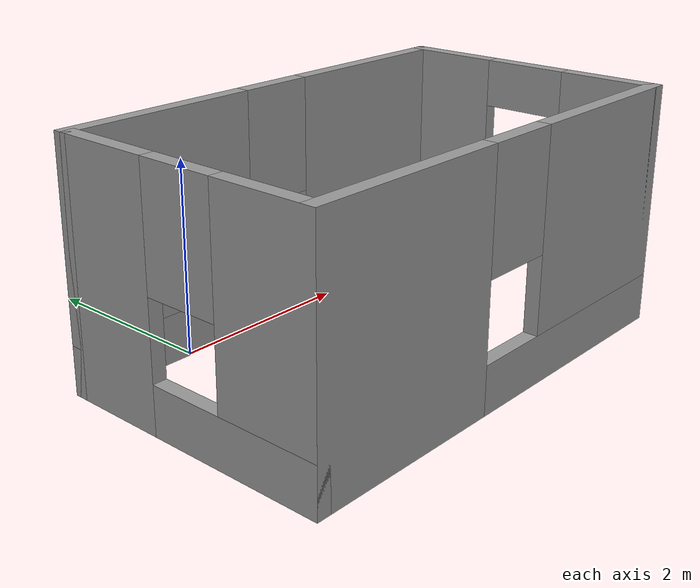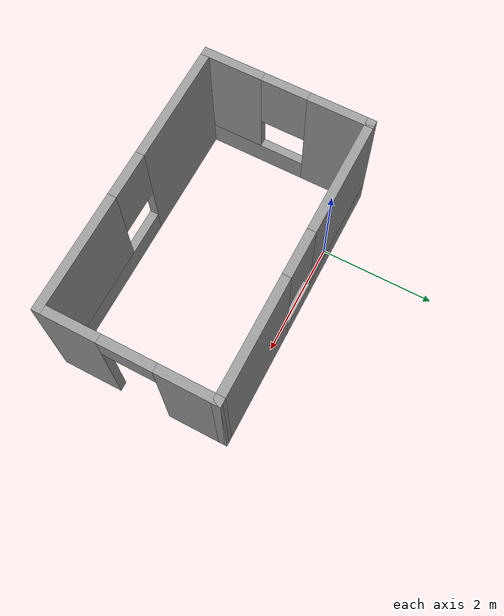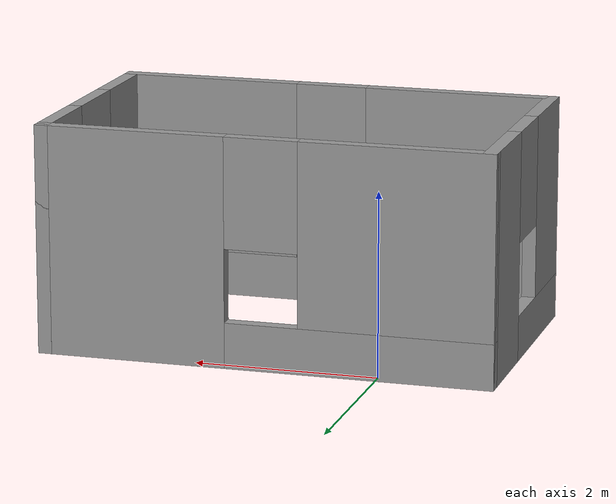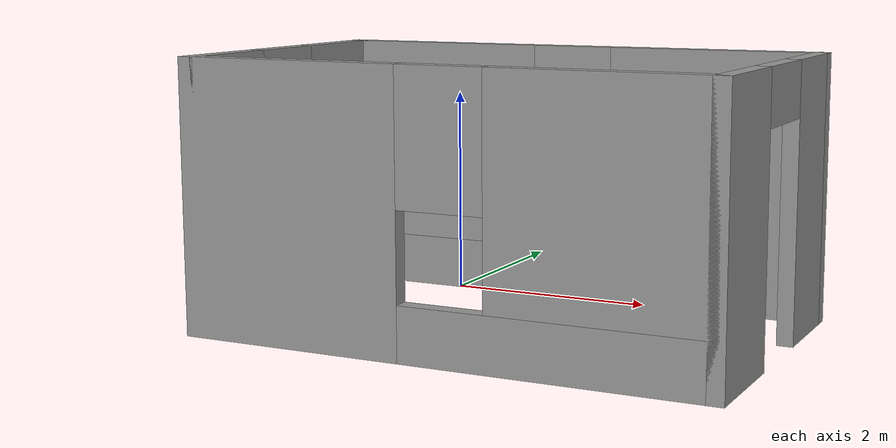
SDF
<?xml version='1.0'?>
<sdf version='1.7'>
  <model name='room_test'>
    <pose>1.2367 -1.38255 0 0 -0 0</pose>
    <link name='Wall_0'>
      <pose>0 -1.425 0 0 -0 0</pose>
      <visual name='Wall_0_Visual_0'>
        <pose>-1.41935 0 1.25 0 -0 0</pose>
        <geometry>
          <box>
            <size>2.1613 0.15 2.5</size>
          </box>
        </geometry>
        <material>
          <script>
            <uri>file://media/materials/scripts/gazebo.material</uri>
            <name>Gazebo/Grey</name>
          </script>
          <ambient>1 1 1 1</ambient>
        </material>
        <meta>
          <layer>0</layer>
        </meta>
      </visual>
      <collision name='Wall_0_Collision_0'>
        <geometry>
          <box>
            <size>2.1613 0.15 2.5</size>
          </box>
        </geometry>
        <pose>-1.41935 0 1.25 0 -0 0</pose>
      </collision>
      <visual name='Wall_0_Visual_1'>
        <pose>1.08065 0 0.25 0 -0 0</pose>
        <geometry>
          <box>
            <size>2.8387 0.15 0.5</size>
          </box>
        </geometry>
        <material>
          <script>
            <uri>file://media/materials/scripts/gazebo.material</uri>
            <name>Gazebo/Grey</name>
          </script>
          <ambient>1 1 1 1</ambient>
        </material>
        <meta>
          <layer>0</layer>
        </meta>
      </visual>
      <collision name='Wall_0_Collision_1'>
        <geometry>
          <box>
            <size>2.8387 0.15 0.5</size>
          </box>
        </geometry>
        <pose>1.08065 0 0.25 0 -0 0</pose>
      </collision>
      <visual name='Wall_0_Visual_2'>
        <pose>1.48065 0 1.5 0 -0 0</pose>
        <geometry>
          <box>
            <size>2.0387 0.15 2</size>
          </box>
        </geometry>
        <material>
          <script>
            <uri>file://media/materials/scripts/gazebo.material</uri>
            <name>Gazebo/Grey</name>
          </script>
          <ambient>1 1 1 1</ambient>
        </material>
        <meta>
          <layer>0</layer>
        </meta>
      </visual>
      <collision name='Wall_0_Collision_2'>
        <geometry>
          <box>
            <size>2.0387 0.15 2</size>
          </box>
        </geometry>
        <pose>1.48065 0 1.5 0 -0 0</pose>
      </collision>
      <visual name='Wall_0_Visual_3'>
        <pose>0.0613 0 1.9 0 -0 0</pose>
        <geometry>
          <box>
            <size>0.8 0.15 1.2</size>
          </box>
        </geometry>
        <material>
          <script>
            <uri>file://media/materials/scripts/gazebo.material</uri>
            <name>Gazebo/Grey</name>
          </script>
          <ambient>1 1 1 1</ambient>
        </material>
        <meta>
          <layer>0</layer>
        </meta>
      </visual>
      <collision name='Wall_0_Collision_3'>
        <geometry>
          <box>
            <size>0.8 0.15 1.2</size>
          </box>
        </geometry>
        <pose>0.0613 0 1.9 0 -0 0</pose>
      </collision>
    </link>
    <link name='Wall_1'>
      <pose>2.425 0 0 0 -0 1.5708</pose>
      <visual name='Wall_1_Visual_0'>
        <pose>-0.97335 0 1.25 0 -0 0</pose>
        <geometry>
          <box>
            <size>1.0533 0.15 2.5</size>
          </box>
        </geometry>
        <material>
          <script>
            <uri>file://media/materials/scripts/gazebo.material</uri>
            <name>Gazebo/Grey</name>
          </script>
          <ambient>1 1 1 1</ambient>
        </material>
        <meta>
          <layer>0</layer>
        </meta>
      </visual>
      <collision name='Wall_1_Collision_0'>
        <geometry>
          <box>
            <size>1.0533 0.15 2.5</size>
          </box>
        </geometry>
        <pose>-0.97335 0 1.25 0 -0 0</pose>
      </collision>
      <visual name='Wall_1_Visual_1'>
        <pose>0.97665 0 1.25 0 -0 0</pose>
        <geometry>
          <box>
            <size>1.0467 0.15 2.5</size>
          </box>
        </geometry>
        <material>
          <script>
            <uri>file://media/materials/scripts/gazebo.material</uri>
            <name>Gazebo/Grey</name>
          </script>
          <ambient>1 1 1 1</ambient>
        </material>
        <meta>
          <layer>0</layer>
        </meta>
      </visual>
      <collision name='Wall_1_Collision_1'>
        <geometry>
          <box>
            <size>1.0467 0.15 2.5</size>
          </box>
        </geometry>
        <pose>0.97665 0 1.25 0 -0 0</pose>
      </collision>
      <visual name='Wall_1_Visual_2'>
        <pose>0.0033 0 2.25 0 -0 0</pose>
        <geometry>
          <box>
            <size>0.9 0.15 0.5</size>
          </box>
        </geometry>
        <material>
          <script>
            <uri>file://media/materials/scripts/gazebo.material</uri>
            <name>Gazebo/Grey</name>
          </script>
          <ambient>1 1 1 1</ambient>
        </material>
        <meta>
          <layer>0</layer>
        </meta>
      </visual>
      <collision name='Wall_1_Collision_2'>
        <geometry>
          <box>
            <size>0.9 0.15 0.5</size>
          </box>
        </geometry>
        <pose>0.0033 0 2.25 0 -0 0</pose>
      </collision>
    </link>
    <link name='Wall_2'>
      <collision name='Wall_2_Collision'>
        <geometry>
          <box>
            <size>0.15 0.15 2.5</size>
          </box>
        </geometry>
        <pose>0 0 1.25 0 -0 0</pose>
      </collision>
      <visual name='Wall_2_Visual'>
        <pose>0 0 1.25 0 -0 0</pose>
        <geometry>
          <box>
            <size>0.15 0.15 2.5</size>
          </box>
        </geometry>
        <material>
          <script>
            <uri>file://media/materials/scripts/gazebo.material</uri>
            <name>Gazebo/Grey</name>
          </script>
          <ambient>1 1 1 1</ambient>
        </material>
        <meta>
          <layer>0</layer>
        </meta>
      </visual>
      <pose>2.425 1.425 0 0 -0 0</pose>
    </link>
    <link name='Wall_3'>
      <pose>0 1.425 0 0 -0 3.14159</pose>
      <visual name='Wall_3_Visual_0'>
        <pose>-1.4542 0 1.25 0 -0 0</pose>
        <geometry>
          <box>
            <size>2.0916 0.15 2.5</size>
          </box>
        </geometry>
        <material>
          <script>
            <uri>file://media/materials/scripts/gazebo.material</uri>
            <name>Gazebo/Grey</name>
          </script>
          <ambient>1 1 1 1</ambient>
        </material>
        <meta>
          <layer>0</layer>
        </meta>
      </visual>
      <collision name='Wall_3_Collision_0'>
        <geometry>
          <box>
            <size>2.0916 0.15 2.5</size>
          </box>
        </geometry>
        <pose>-1.4542 0 1.25 0 -0 0</pose>
      </collision>
      <visual name='Wall_3_Visual_1'>
        <pose>1.0458 0 0.25 0 -0 0</pose>
        <geometry>
          <box>
            <size>2.9084 0.15 0.5</size>
          </box>
        </geometry>
        <material>
          <script>
            <uri>file://media/materials/scripts/gazebo.material</uri>
            <name>Gazebo/Grey</name>
          </script>
          <ambient>1 1 1 1</ambient>
        </material>
        <meta>
          <layer>0</layer>
        </meta>
      </visual>
      <collision name='Wall_3_Collision_1'>
        <geometry>
          <box>
            <size>2.9084 0.15 0.5</size>
          </box>
        </geometry>
        <pose>1.0458 0 0.25 0 -0 0</pose>
      </collision>
      <visual name='Wall_3_Visual_2'>
        <pose>1.4458 0 1.5 0 -0 0</pose>
        <geometry>
          <box>
            <size>2.1084 0.15 2</size>
          </box>
        </geometry>
        <material>
          <script>
            <uri>file://media/materials/scripts/gazebo.material</uri>
            <name>Gazebo/Grey</name>
          </script>
          <ambient>1 1 1 1</ambient>
        </material>
        <meta>
          <layer>0</layer>
        </meta>
      </visual>
      <collision name='Wall_3_Collision_2'>
        <geometry>
          <box>
            <size>2.1084 0.15 2</size>
          </box>
        </geometry>
        <pose>1.4458 0 1.5 0 -0 0</pose>
      </collision>
      <visual name='Wall_3_Visual_3'>
        <pose>-0.0084 0 1.9 0 -0 0</pose>
        <geometry>
          <box>
            <size>0.8 0.15 1.2</size>
          </box>
        </geometry>
        <material>
          <script>
            <uri>file://media/materials/scripts/gazebo.material</uri>
            <name>Gazebo/Grey</name>
          </script>
          <ambient>1 1 1 1</ambient>
        </material>
        <meta>
          <layer>0</layer>
        </meta>
      </visual>
      <collision name='Wall_3_Collision_3'>
        <geometry>
          <box>
            <size>0.8 0.15 1.2</size>
          </box>
        </geometry>
        <pose>-0.0084 0 1.9 0 -0 0</pose>
      </collision>
    </link>
    <link name='Wall_4'>
      <collision name='Wall_4_Collision'>
        <geometry>
          <box>
            <size>0.15 0.15 2.5</size>
          </box>
        </geometry>
        <pose>0 0 1.25 0 -0 0</pose>
      </collision>
      <visual name='Wall_4_Visual'>
        <pose>0 0 1.25 0 -0 0</pose>
        <geometry>
          <box>
            <size>0.15 0.15 2.5</size>
          </box>
        </geometry>
        <material>
          <script>
            <uri>file://media/materials/scripts/gazebo.material</uri>
            <name>Gazebo/Grey</name>
          </script>
          <ambient>1 1 1 1</ambient>
        </material>
        <meta>
          <layer>0</layer>
        </meta>
      </visual>
      <pose>-2.425 1.425 0 0 -0 0</pose>
    </link>
    <link name='Wall_5'>
      <pose>-2.425 0 0 0 -0 -1.5708</pose>
      <visual name='Wall_5_Visual_0'>
        <pose>-0.938425 0 1.25 0 -0 0</pose>
        <geometry>
          <box>
            <size>1.12315 0.15 2.5</size>
          </box>
        </geometry>
        <material>
          <script>
            <uri>file://media/materials/scripts/gazebo.material</uri>
            <name>Gazebo/Grey</name>
          </script>
          <ambient>1 1 1 1</ambient>
        </material>
        <meta>
          <layer>0</layer>
        </meta>
      </visual>
      <collision name='Wall_5_Collision_0'>
        <geometry>
          <box>
            <size>1.12315 0.15 2.5</size>
          </box>
        </geometry>
        <pose>-0.938425 0 1.25 0 -0 0</pose>
      </collision>
      <visual name='Wall_5_Visual_1'>
        <pose>0.561575 0 0.25 0 -0 0</pose>
        <geometry>
          <box>
            <size>1.87685 0.15 0.5</size>
          </box>
        </geometry>
        <material>
          <script>
            <uri>file://media/materials/scripts/gazebo.material</uri>
            <name>Gazebo/Grey</name>
          </script>
          <ambient>1 1 1 1</ambient>
        </material>
        <meta>
          <layer>0</layer>
        </meta>
      </visual>
      <collision name='Wall_5_Collision_1'>
        <geometry>
          <box>
            <size>1.87685 0.15 0.5</size>
          </box>
        </geometry>
        <pose>0.561575 0 0.25 0 -0 0</pose>
      </collision>
      <visual name='Wall_5_Visual_2'>
        <pose>0.961575 0 1.5 0 -0 0</pose>
        <geometry>
          <box>
            <size>1.07685 0.15 2</size>
          </box>
        </geometry>
        <material>
          <script>
            <uri>file://media/materials/scripts/gazebo.material</uri>
            <name>Gazebo/Grey</name>
          </script>
          <ambient>1 1 1 1</ambient>
        </material>
        <meta>
          <layer>0</layer>
        </meta>
      </visual>
      <collision name='Wall_5_Collision_2'>
        <geometry>
          <box>
            <size>1.07685 0.15 2</size>
          </box>
        </geometry>
        <pose>0.961575 0 1.5 0 -0 0</pose>
      </collision>
      <visual name='Wall_5_Visual_3'>
        <pose>0.02315 0 1.9 0 -0 0</pose>
        <geometry>
          <box>
            <size>0.8 0.15 1.2</size>
          </box>
        </geometry>
        <material>
          <script>
            <uri>file://media/materials/scripts/gazebo.material</uri>
            <name>Gazebo/Grey</name>
          </script>
          <ambient>1 1 1 1</ambient>
        </material>
        <meta>
          <layer>0</layer>
        </meta>
      </visual>
      <collision name='Wall_5_Collision_3'>
        <geometry>
          <box>
            <size>0.8 0.15 1.2</size>
          </box>
        </geometry>
        <pose>0.02315 0 1.9 0 -0 0</pose>
      </collision>
    </link>
    <static>1</static>
  </model>
</sdf>
